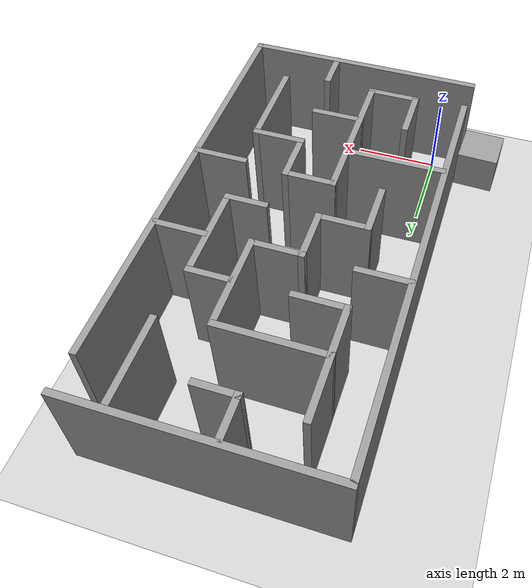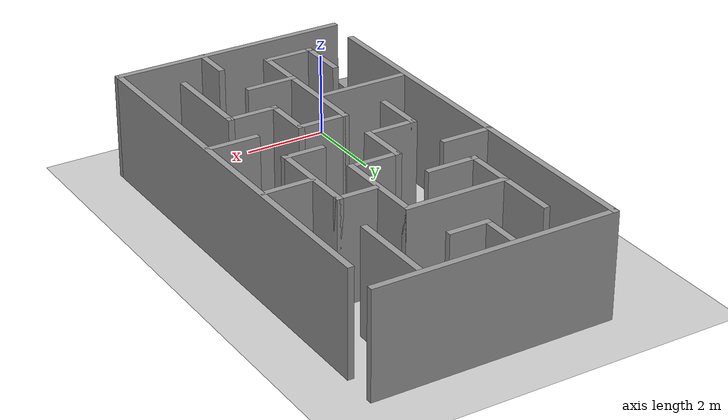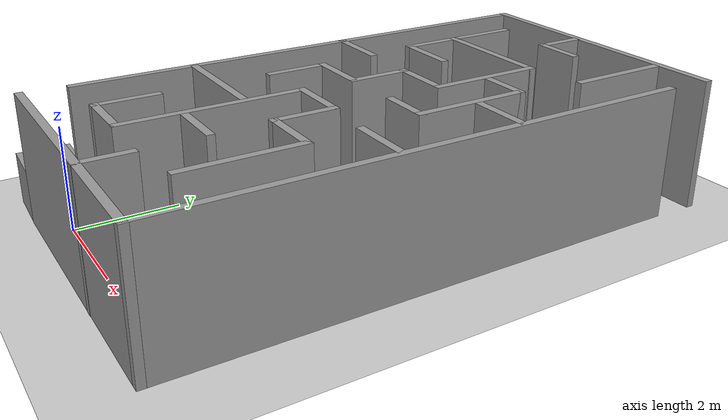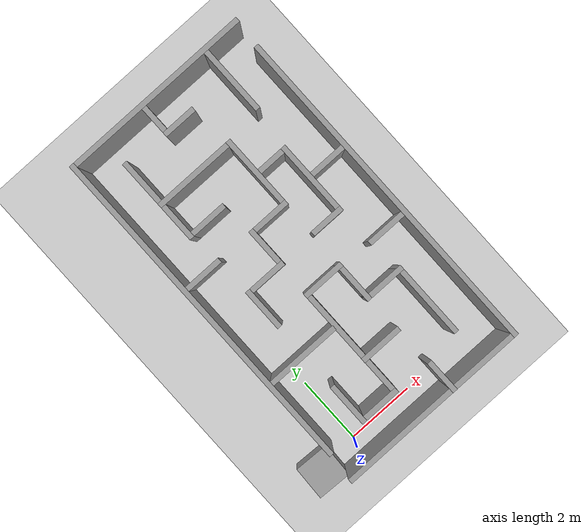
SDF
<sdf version="1.6">
 <world name="default">
  <light name="sun" type="directional">
   <pose>0 0 10 0 -0 0</pose>
   <diffuse>0.8 0.8 0.8 1</diffuse>
   <specular>0.2 0.2 0.2 1</specular>
   <attenuation>
    <range>1000</range>
    <constant>0.9</constant>
    <linear>0.01</linear>
    <quadratic>0.001</quadratic>
   </attenuation>
   <direction>-0.5 0.1 -0.9</direction>
  </light>
  <model name="ground_plane">
   <static>1</static>
   <link name="link">
    <collision name="collision">
     <geometry><plane><normal>0 0 1</normal><size>100 100</size></plane></geometry>
     <surface>
      <contact><collide_bitmask>65535</collide_bitmask></contact>
      <friction><ode><mu>100</mu><mu2>50</mu2></ode></friction>
     </surface>
    </collision>
    <visual name="visual">
     <cast_shadows>0</cast_shadows>
     <geometry><plane><normal>0 0 1</normal><size>100 100</size></plane></geometry>
     <material>
      <script><uri>file://media/materials/scripts/gazebo.material</uri><name>Gazebo/Grey</name></script>
     </material>
    </visual>
   </link>
  </model>
  <gravity>0 0 -9.8</gravity>
  <magnetic_field>6e-06 2.3e-05 -4.2e-05</magnetic_field>
  <atmosphere type="adiabatic"/>
  <physics name="default_physics" default="0" type="ode">
   <max_step_size>0.001</max_step_size>
   <real_time_factor>1</real_time_factor>
   <real_time_update_rate>1000</real_time_update_rate>
  </physics>
  <scene><ambient>0.4 0.4 0.4 1</ambient><background>0.7 0.7 0.7 1</background><shadows>1</shadows></scene>
  <spherical_coordinates>
   <surface_model>EARTH_WGS84</surface_model>
   <latitude_deg>0</latitude_deg>
   <longitude_deg>0</longitude_deg>
   <elevation>0</elevation>
   <heading_deg>0</heading_deg>
  </spherical_coordinates>
  <model name="Maze">
   <pose>2.2 4.9 0 0 -0 1.57</pose>
   <link name="Wall_1">
    <collision name="Wall_1_Collision">
     <geometry><box><size>10 0.15 2.5</size></box></geometry>
     <pose>0 0 1.25 0 -0 0</pose>
    </collision>
    <visual name="Wall_1_Visual">
     <pose>0 0 1.25 0 -0 0</pose>
     <geometry><box><size>10 0.15 2.5</size></box></geometry>
     <material>
      <script><uri>file://media/materials/scripts/gazebo.material</uri><name>Gazebo/Grey</name></script>
      <ambient>1 1 1 1</ambient>
     </material>
     <meta><layer>0</layer></meta>
    </visual>
    <pose>0.448658 2.7832 0 0 -0 0</pose>
   </link>
   <link name="Wall_10">
    <collision name="Wall_10_Collision">
     <geometry><box><size>1.25 0.15 2.5</size></box></geometry>
     <pose>0 0 1.25 0 -0 0</pose>
    </collision>
    <visual name="Wall_10_Visual">
     <pose>0 0 1.25 0 -0 0</pose>
     <geometry><box><size>1.25 0.15 2.5</size></box></geometry>
     <material>
      <script><uri>file://media/materials/scripts/gazebo.material</uri><name>Gazebo/Grey</name></script>
      <ambient>1 1 1 1</ambient>
     </material>
     <meta><layer>0</layer></meta>
    </visual>
    <pose>-1.07048 -0.053081 0 0 -0 -1.5708</pose>
   </link>
   <link name="Wall_11">
    <collision name="Wall_11_Collision">
     <geometry><box><size>1.25 0.15 2.5</size></box></geometry>
     <pose>0 0 1.25 0 -0 0</pose>
    </collision>
    <visual name="Wall_11_Visual">
     <pose>0 0 1.25 0 -0 0</pose>
     <geometry><box><size>1.25 0.15 2.5</size></box></geometry>
     <material>
      <script><uri>file://media/materials/scripts/gazebo.material</uri><name>Gazebo/Grey</name></script>
      <ambient>1 1 1 1</ambient>
     </material>
     <meta><layer>0</layer></meta>
    </visual>
    <pose>-1.62048 -0.603081 0 0 -0 3.14159</pose>
   </link>
   <link name="Wall_12">
    <collision name="Wall_12_Collision">
     <geometry><box><size>1.25 0.15 2.5</size></box></geometry>
     <pose>0 0 1.25 0 -0 0</pose>
    </collision>
    <visual name="Wall_12_Visual">
     <pose>0 0 1.25 0 -0 0</pose>
     <geometry><box><size>1.25 0.15 2.5</size></box></geometry>
     <material>
      <script><uri>file://media/materials/scripts/gazebo.material</uri><name>Gazebo/Grey</name></script>
      <ambient>1 1 1 1</ambient>
     </material>
     <meta><layer>0</layer></meta>
    </visual>
    <pose>-2.17048 -1.15308 0 0 -0 -1.5708</pose>
   </link>
   <link name="Wall_13">
    <collision name="Wall_13_Collision">
     <geometry><box><size>2.25 0.15 2.5</size></box></geometry>
     <pose>0 0 1.25 0 -0 0</pose>
    </collision>
    <visual name="Wall_13_Visual">
     <pose>0 0 1.25 0 -0 0</pose>
     <geometry><box><size>2.25 0.15 2.5</size></box></geometry>
     <material>
      <script><uri>file://media/materials/scripts/gazebo.material</uri><name>Gazebo/Grey</name></script>
      <ambient>1 1 1 1</ambient>
     </material>
     <meta><layer>0</layer></meta>
    </visual>
    <pose>-3.22048 -1.70308 0 0 -0 3.14159</pose>
   </link>
   <link name="Wall_15">
    <collision name="Wall_15_Collision">
     <geometry><box><size>2.25 0.15 2.5</size></box></geometry>
     <pose>0 0 1.25 0 -0 0</pose>
    </collision>
    <visual name="Wall_15_Visual">
     <pose>0 0 1.25 0 -0 0</pose>
     <geometry><box><size>2.25 0.15 2.5</size></box></geometry>
     <material>
      <script><uri>file://media/materials/scripts/gazebo.material</uri><name>Gazebo/Grey</name></script>
      <ambient>1 1 1 1</ambient>
     </material>
     <meta><layer>0</layer></meta>
    </visual>
    <pose>-2.16461 1.67356 0 0 -0 1.5708</pose>
   </link>
   <link name="Wall_17">
    <collision name="Wall_17_Collision">
     <geometry><box><size>1.25 0.15 2.5</size></box></geometry>
     <pose>0 0 1.25 0 -0 0</pose>
    </collision>
    <visual name="Wall_17_Visual">
     <pose>0 0 1.25 0 -0 0</pose>
     <geometry><box><size>1.25 0.15 2.5</size></box></geometry>
     <material>
      <script><uri>file://media/materials/scripts/gazebo.material</uri><name>Gazebo/Grey</name></script>
      <ambient>1 1 1 1</ambient>
     </material>
     <meta><layer>0</layer></meta>
    </visual>
    <pose>1.09006 2.20278 0 0 -0 -1.5708</pose>
   </link>
   <link name="Wall_19">
    <collision name="Wall_19_Collision">
     <geometry><box><size>1.25 0.15 2.5</size></box></geometry>
     <pose>0 0 1.25 0 -0 0</pose>
    </collision>
    <visual name="Wall_19_Visual">
     <pose>0 0 1.25 0 -0 0</pose>
     <geometry><box><size>1.25 0.15 2.5</size></box></geometry>
     <material>
      <script><uri>file://media/materials/scripts/gazebo.material</uri><name>Gazebo/Grey</name></script>
      <ambient>1 1 1 1</ambient>
     </material>
     <meta><layer>0</layer></meta>
    </visual>
    <pose>-0.595626 1.58171 0 0 -0 0</pose>
   </link>
   <link name="Wall_2">
    <collision name="Wall_2_Collision">
     <geometry><box><size>5.75 0.15 2.5</size></box></geometry>
     <pose>0 0 1.25 0 -0 0</pose>
    </collision>
    <visual name="Wall_2_Visual">
     <pose>0 0 1.25 0 -0 0</pose>
     <geometry><box><size>5.75 0.15 2.5</size></box></geometry>
     <material>
      <script><uri>file://media/materials/scripts/gazebo.material</uri><name>Gazebo/Grey</name></script>
      <ambient>1 1 1 1</ambient>
     </material>
     <meta><layer>0</layer></meta>
    </visual>
    <pose>5.37366 -0.016799 0 0 -0 -1.5708</pose>
   </link>
   <link name="Wall_20">
    <collision name="Wall_20_Collision">
     <geometry><box><size>1.25 0.15 2.5</size></box></geometry>
     <pose>0 0 1.25 0 -0 0</pose>
    </collision>
    <visual name="Wall_20_Visual">
     <pose>0 0 1.25 0 -0 0</pose>
     <geometry><box><size>1.25 0.15 2.5</size></box></geometry>
     <material>
      <script><uri>file://media/materials/scripts/gazebo.material</uri><name>Gazebo/Grey</name></script>
      <ambient>1 1 1 1</ambient>
     </material>
     <meta><layer>0</layer></meta>
    </visual>
    <pose>-0.045626 1.03171 0 0 -0 -1.5708</pose>
   </link>
   <link name="Wall_21">
    <collision name="Wall_21_Collision">
     <geometry><box><size>1.25 0.15 2.5</size></box></geometry>
     <pose>0 0 1.25 0 -0 0</pose>
    </collision>
    <visual name="Wall_21_Visual">
     <pose>0 0 1.25 0 -0 0</pose>
     <geometry><box><size>1.25 0.15 2.5</size></box></geometry>
     <material>
      <script><uri>file://media/materials/scripts/gazebo.material</uri><name>Gazebo/Grey</name></script>
      <ambient>1 1 1 1</ambient>
     </material>
     <meta><layer>0</layer></meta>
    </visual>
    <pose>0.504374 0.48171 0 0 -0 0</pose>
   </link>
   <link name="Wall_22">
    <collision name="Wall_22_Collision">
     <geometry><box><size>1.25 0.15 2.5</size></box></geometry>
     <pose>0 0 1.25 0 -0 0</pose>
    </collision>
    <visual name="Wall_22_Visual">
     <pose>0 0 1.25 0 -0 0</pose>
     <geometry><box><size>1.25 0.15 2.5</size></box></geometry>
     <material>
      <script><uri>file://media/materials/scripts/gazebo.material</uri><name>Gazebo/Grey</name></script>
      <ambient>1 1 1 1</ambient>
     </material>
     <meta><layer>0</layer></meta>
    </visual>
    <pose>1.05437 -0.06829 0 0 -0 -1.5708</pose>
   </link>
   <link name="Wall_23">
    <collision name="Wall_23_Collision">
     <geometry><box><size>2.25 0.15 2.5</size></box></geometry>
     <pose>0 0 1.25 0 -0 0</pose>
    </collision>
    <visual name="Wall_23_Visual">
     <pose>0 0 1.25 0 -0 0</pose>
     <geometry><box><size>2.25 0.15 2.5</size></box></geometry>
     <material>
      <script><uri>file://media/materials/scripts/gazebo.material</uri><name>Gazebo/Grey</name></script>
      <ambient>1 1 1 1</ambient>
     </material>
     <meta><layer>0</layer></meta>
    </visual>
    <pose>2.10437 -0.61829 0 0 -0 0</pose>
   </link>
   <link name="Wall_24">
    <collision name="Wall_24_Collision">
     <geometry><box><size>2.5 0.15 2.5</size></box></geometry>
     <pose>0 0 1.25 0 -0 0</pose>
    </collision>
    <visual name="Wall_24_Visual">
     <pose>0 0 1.25 0 -0 0</pose>
     <geometry><box><size>2.5 0.15 2.5</size></box></geometry>
     <material>
      <script><uri>file://media/materials/scripts/gazebo.material</uri><name>Gazebo/Grey</name></script>
      <ambient>1 1 1 1</ambient>
     </material>
     <meta><layer>0</layer></meta>
    </visual>
    <pose>3.15437 0.55671 0 0 -0 1.5708</pose>
   </link>
   <link name="Wall_25">
    <collision name="Wall_25_Collision">
     <geometry><box><size>1.25 0.15 2.5</size></box></geometry>
     <pose>0 0 1.25 0 -0 0</pose>
    </collision>
    <visual name="Wall_25_Visual">
     <pose>0 0 1.25 0 -0 0</pose>
     <geometry><box><size>1.25 0.15 2.5</size></box></geometry>
     <material>
      <script><uri>file://media/materials/scripts/gazebo.material</uri><name>Gazebo/Grey</name></script>
      <ambient>1 1 1 1</ambient>
     </material>
     <meta><layer>0</layer></meta>
    </visual>
    <pose>2.60437 1.73171 0 0 -0 3.14159</pose>
   </link>
   <link name="Wall_26">
    <collision name="Wall_26_Collision">
     <geometry><box><size>1.25 0.15 2.5</size></box></geometry>
     <pose>0 0 1.25 0 -0 0</pose>
    </collision>
    <visual name="Wall_26_Visual">
     <pose>0 0 1.25 0 -0 0</pose>
     <geometry><box><size>1.25 0.15 2.5</size></box></geometry>
     <material>
      <script><uri>file://media/materials/scripts/gazebo.material</uri><name>Gazebo/Grey</name></script>
      <ambient>1 1 1 1</ambient>
     </material>
     <meta><layer>0</layer></meta>
    </visual>
    <pose>2.05437 1.18171 0 0 -0 -1.5708</pose>
   </link>
   <link name="Wall_28">
    <collision name="Wall_28_Collision">
     <geometry><box><size>1.5 0.15 2.5</size></box></geometry>
     <pose>0 0 1.25 0 -0 0</pose>
    </collision>
    <visual name="Wall_28_Visual">
     <pose>0 0 1.25 0 -0 0</pose>
     <geometry><box><size>1.5 0.15 2.5</size></box></geometry>
     <material>
      <script><uri>file://media/materials/scripts/gazebo.material</uri><name>Gazebo/Grey</name></script>
      <ambient>1 1 1 1</ambient>
     </material>
     <meta><layer>0</layer></meta>
    </visual>
    <pose>3.82937 1.73171 0 0 -0 0</pose>
   </link>
   <link name="Wall_30">
    <collision name="Wall_30_Collision">
     <geometry><box><size>1 0.15 2.5</size></box></geometry>
     <pose>0 0 1.25 0 -0 0</pose>
    </collision>
    <visual name="Wall_30_Visual">
     <pose>0 0 1.25 0 -0 0</pose>
     <geometry><box><size>1 0.15 2.5</size></box></geometry>
     <material>
      <script><uri>file://media/materials/scripts/gazebo.material</uri><name>Gazebo/Grey</name></script>
      <ambient>1 1 1 1</ambient>
     </material>
     <meta><layer>0</layer></meta>
    </visual>
    <pose>-0.004969 -1.13981 0 0 -0 -1.5708</pose>
   </link>
   <link name="Wall_31">
    <collision name="Wall_31_Collision">
     <geometry><box><size>2.25 0.15 2.5</size></box></geometry>
     <pose>0 0 1.25 0 -0 0</pose>
    </collision>
    <visual name="Wall_31_Visual">
     <pose>0 0 1.25 0 -0 0</pose>
     <geometry><box><size>2.25 0.15 2.5</size></box></geometry>
     <material>
      <script><uri>file://media/materials/scripts/gazebo.material</uri><name>Gazebo/Grey</name></script>
      <ambient>1 1 1 1</ambient>
     </material>
     <meta><layer>0</layer></meta>
    </visual>
    <pose>1.04503 -1.56481 0 0 -0 0</pose>
   </link>
   <link name="Wall_32">
    <collision name="Wall_32_Collision">
     <geometry><box><size>1 0.15 2.5</size></box></geometry>
     <pose>0 0 1.25 0 -0 0</pose>
    </collision>
    <visual name="Wall_32_Visual">
     <pose>0 0 1.25 0 -0 0</pose>
     <geometry><box><size>1 0.15 2.5</size></box></geometry>
     <material>
      <script><uri>file://media/materials/scripts/gazebo.material</uri><name>Gazebo/Grey</name></script>
      <ambient>1 1 1 1</ambient>
     </material>
     <meta><layer>0</layer></meta>
    </visual>
    <pose>2.09503 -1.13981 0 0 -0 1.5708</pose>
   </link>
   <link name="Wall_34">
    <collision name="Wall_34_Collision">
     <geometry><box><size>2 0.15 2.5</size></box></geometry>
     <pose>0 0 1.25 0 -0 0</pose>
    </collision>
    <visual name="Wall_34_Visual">
     <pose>0 0 1.25 0 -0 0</pose>
     <geometry><box><size>2 0.15 2.5</size></box></geometry>
     <material>
      <script><uri>file://media/materials/scripts/gazebo.material</uri><name>Gazebo/Grey</name></script>
      <ambient>1 1 1 1</ambient>
     </material>
     <meta><layer>0</layer></meta>
    </visual>
    <pose>4.31158 -1.7338 0 0 -0 0</pose>
   </link>
   <link name="Wall_36">
    <collision name="Wall_36_Collision">
     <geometry><box><size>1 0.15 2.5</size></box></geometry>
     <pose>0 0 1.25 0 -0 0</pose>
    </collision>
    <visual name="Wall_36_Visual">
     <pose>0 0 1.25 0 -0 0</pose>
     <geometry><box><size>1 0.15 2.5</size></box></geometry>
     <material>
      <script><uri>file://media/materials/scripts/gazebo.material</uri><name>Gazebo/Grey</name></script>
      <ambient>1 1 1 1</ambient>
     </material>
     <meta><layer>0</layer></meta>
    </visual>
    <pose>4.42078 -0.016054 0 0 -0 1.5708</pose>
   </link>
   <link name="Wall_37">
    <collision name="Wall_37_Collision">
     <geometry><box><size>1 0.15 2.5</size></box></geometry>
     <pose>0 0 1.25 0 -0 0</pose>
    </collision>
    <visual name="Wall_37_Visual">
     <pose>0 0 1.25 0 -0 0</pose>
     <geometry><box><size>1 0.15 2.5</size></box></geometry>
     <material>
      <script><uri>file://media/materials/scripts/gazebo.material</uri><name>Gazebo/Grey</name></script>
      <ambient>1 1 1 1</ambient>
     </material>
     <meta><layer>0</layer></meta>
    </visual>
    <pose>4.84578 0.408946 0 0 -0 0</pose>
   </link>
   <link name="Wall_39">
    <collision name="Wall_39_Collision">
     <geometry><box><size>1 0.15 2.5</size></box></geometry>
     <pose>0 0 1.25 0 -0 0</pose>
    </collision>
    <visual name="Wall_39_Visual">
     <pose>0 0 1.25 0 -0 0</pose>
     <geometry><box><size>1 0.15 2.5</size></box></geometry>
     <material>
      <script><uri>file://media/materials/scripts/gazebo.material</uri><name>Gazebo/Grey</name></script>
      <ambient>1 1 1 1</ambient>
     </material>
     <meta><layer>0</layer></meta>
    </visual>
    <pose>-4.94866 -0.669185 0 0 -0 0</pose>
   </link>
   <link name="Wall_4">
    <collision name="Wall_4_Collision">
     <geometry><box><size>10 0.15 2.5</size></box></geometry>
     <pose>0 0 1.25 0 -0 0</pose>
    </collision>
    <visual name="Wall_4_Visual">
     <pose>0 0 1.25 0 -0 0</pose>
     <geometry><box><size>10 0.15 2.5</size></box></geometry>
     <material>
      <script><uri>file://media/materials/scripts/gazebo.material</uri><name>Gazebo/Grey</name></script>
      <ambient>1 1 1 1</ambient>
     </material>
     <meta><layer>0</layer></meta>
    </visual>
    <pose>-0.443388 -2.7832 0 0 -0 3.14159</pose>
   </link>
   <link name="Wall_41">
    <collision name="Wall_41_Collision">
     <geometry><box><size>1.25 0.15 2.5</size></box></geometry>
     <pose>0 0 1.25 0 -0 0</pose>
    </collision>
    <visual name="Wall_41_Visual">
     <pose>0 0 1.25 0 -0 0</pose>
     <geometry><box><size>1.25 0.15 2.5</size></box></geometry>
     <material>
      <script><uri>file://media/materials/scripts/gazebo.material</uri><name>Gazebo/Grey</name></script>
      <ambient>1 1 1 1</ambient>
     </material>
     <meta><layer>0</layer></meta>
    </visual>
    <pose>-3.29006 -0.048111 0 0 -0 -1.5708</pose>
   </link>
   <link name="Wall_43">
    <collision name="Wall_43_Collision">
     <geometry><box><size>1.25 0.15 2.5</size></box></geometry>
     <pose>0 0 1.25 0 -0 0</pose>
    </collision>
    <visual name="Wall_43_Visual">
     <pose>0 0 1.25 0 -0 0</pose>
     <geometry><box><size>1.25 0.15 2.5</size></box></geometry>
     <material>
      <script><uri>file://media/materials/scripts/gazebo.material</uri><name>Gazebo/Grey</name></script>
      <ambient>1 1 1 1</ambient>
     </material>
     <meta><layer>0</layer></meta>
    </visual>
    <pose>-1.16083 -2.18757 0 0 -0 1.5708</pose>
   </link>
   <link name="Wall_45">
    <collision name="Wall_45_Collision">
     <geometry><box><size>1.25 0.15 2.5</size></box></geometry>
     <pose>0 0 1.25 0 -0 0</pose>
    </collision>
    <visual name="Wall_45_Visual">
     <pose>0 0 1.25 0 -0 0</pose>
     <geometry><box><size>1.25 0.15 2.5</size></box></geometry>
     <material>
      <script><uri>file://media/materials/scripts/gazebo.material</uri><name>Gazebo/Grey</name></script>
      <ambient>1 1 1 1</ambient>
     </material>
     <meta><layer>0</layer></meta>
    </visual>
    <pose>1.13569 -2.18757 0 0 -0 1.5708</pose>
   </link>
   <link name="Wall_5">
    <collision name="Wall_5_Collision">
     <geometry><box><size>5.75 0.15 2.5</size></box></geometry>
     <pose>0 0 1.25 0 -0 0</pose>
    </collision>
    <visual name="Wall_5_Visual">
     <pose>0 0 1.25 0 -0 0</pose>
     <geometry><box><size>5.75 0.15 2.5</size></box></geometry>
     <material>
      <script><uri>file://media/materials/scripts/gazebo.material</uri><name>Gazebo/Grey</name></script>
      <ambient>1 1 1 1</ambient>
     </material>
     <meta><layer>0</layer></meta>
    </visual>
    <pose>-5.36839 0.016799 0 0 -0 1.5708</pose>
   </link>
   <link name="Wall_7">
    <collision name="Wall_7_Collision">
     <geometry><box><size>1.25 0.15 2.5</size></box></geometry>
     <pose>0 0 1.25 0 -0 0</pose>
    </collision>
    <visual name="Wall_7_Visual">
     <pose>0 0 1.25 0 -0 0</pose>
     <geometry><box><size>1.25 0.15 2.5</size></box></geometry>
     <material>
      <script><uri>file://media/materials/scripts/gazebo.material</uri><name>Gazebo/Grey</name></script>
      <ambient>1 1 1 1</ambient>
     </material>
     <meta><layer>0</layer></meta>
    </visual>
    <pose>-3.87048 1.59692 0 0 -0 3.14159</pose>
   </link>
   <link name="Wall_8">
    <collision name="Wall_8_Collision">
     <geometry><box><size>1.25 0.15 2.5</size></box></geometry>
     <pose>0 0 1.25 0 -0 0</pose>
    </collision>
    <visual name="Wall_8_Visual">
     <pose>0 0 1.25 0 -0 0</pose>
     <geometry><box><size>1.25 0.15 2.5</size></box></geometry>
     <material>
      <script><uri>file://media/materials/scripts/gazebo.material</uri><name>Gazebo/Grey</name></script>
      <ambient>1 1 1 1</ambient>
     </material>
     <meta><layer>0</layer></meta>
    </visual>
    <pose>-4.42048 1.04692 0 0 -0 -1.5708</pose>
   </link>
   <link name="Wall_9">
    <collision name="Wall_9_Collision">
     <geometry><box><size>3.5 0.15 2.5</size></box></geometry>
     <pose>0 0 1.25 0 -0 0</pose>
    </collision>
    <visual name="Wall_9_Visual">
     <pose>0 0 1.25 0 -0 0</pose>
     <geometry><box><size>3.5 0.15 2.5</size></box></geometry>
     <material>
      <script><uri>file://media/materials/scripts/gazebo.material</uri><name>Gazebo/Grey</name></script>
      <ambient>1 1 1 1</ambient>
     </material>
     <meta><layer>0</layer></meta>
    </visual>
    <pose>-2.74548 0.496919 0 0 -0 0</pose>
   </link>
   <static>1</static>
  </model>
  <model name="unit_box">
   <pose>-1.1819 -0.018969 0.5 0 -0 -0.038982</pose>
   <link name="link">
    <inertial>
     <mass>1</mass>
     <inertia>
      <ixx>0.166667</ixx>
      <ixy>0</ixy>
      <ixz>0</ixz>
      <iyy>0.166667</iyy>
      <iyz>0</iyz>
      <izz>0.166667</izz>
     </inertia>
    </inertial>
    <collision name="collision"><geometry><box><size>1 1 1</size></box></geometry></collision>
    <visual name="visual">
     <geometry><box><size>1 1 1</size></box></geometry>
     <material>
      <script><name>Gazebo/Grey</name><uri>file://media/materials/scripts/gazebo.material</uri></script>
     </material>
    </visual>
   </link>
  </model>
 </world>
</sdf>
